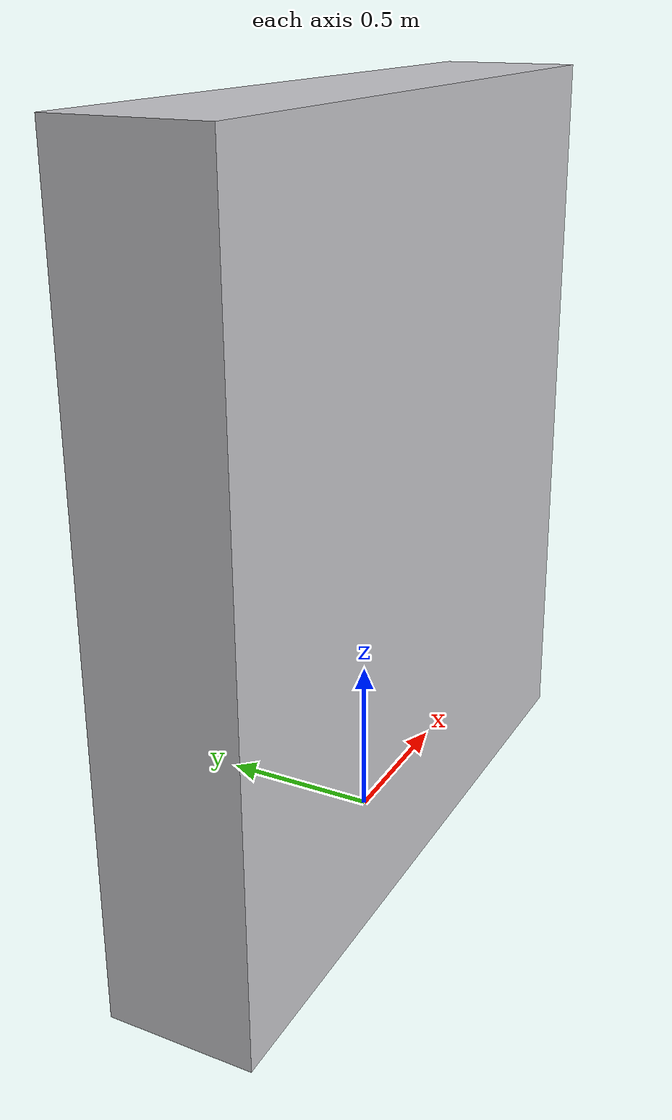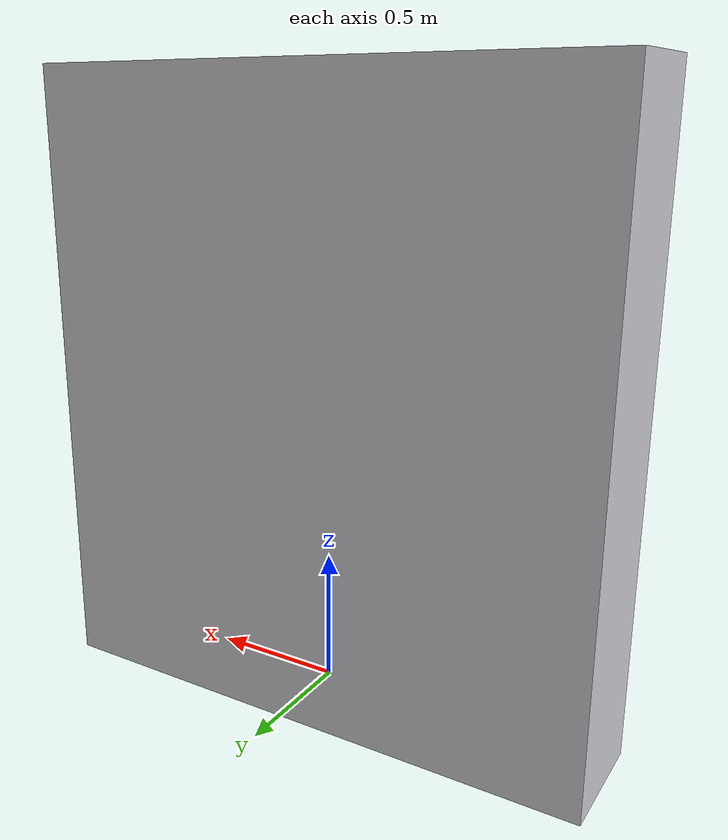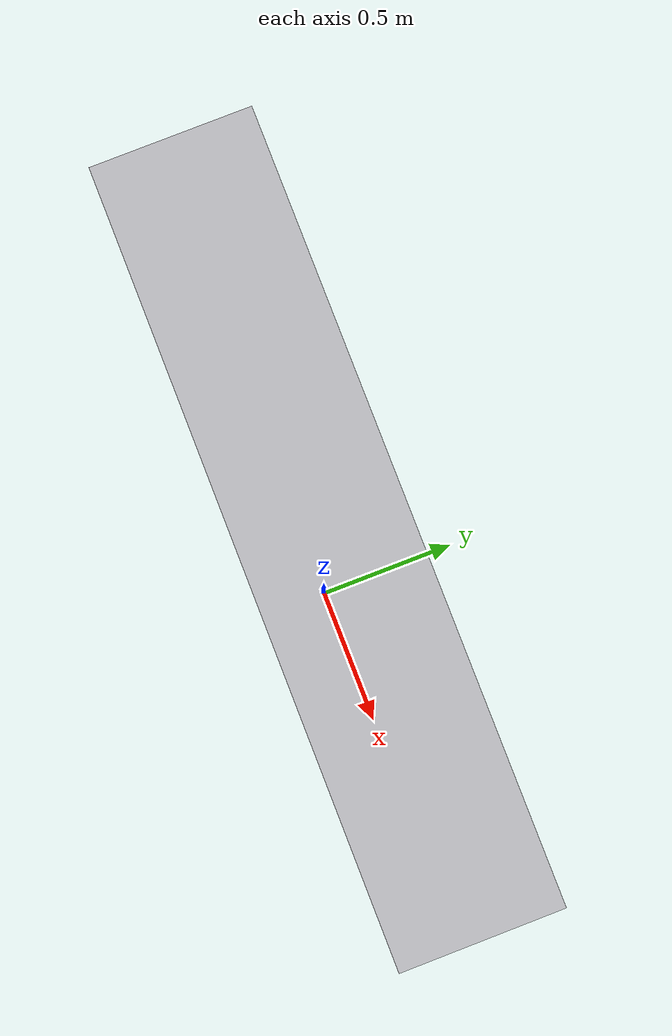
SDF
<?xml version='1.0' encoding='utf-8'?>
<sdf version="1.6">
  <model name="aws_robomaker_hospital_elevator_01_portal">
    <static>true</static>
    <link name="link">
      <collision name="collision_1">
        <pose>0 0 1.1 0 0 0</pose>
        <geometry>
          <box>
            <size>2.2 0.45 2.4</size>
          </box>
        </geometry>
      </collision>
      <visual name="visual_1">
        <pose>0 0 1.1 0 0 0</pose>
        <geometry>
          <box>
            <size>2.2 0.45 2.4</size>
          </box>
        </geometry>
        <material>
          <ambient>0.78 0.78 0.8 1</ambient>
          <diffuse>0.78 0.78 0.8 1</diffuse>
          <specular>0.08 0.08 0.08 1</specular>
        </material>
      </visual>
    </link>
  </model>
</sdf>
